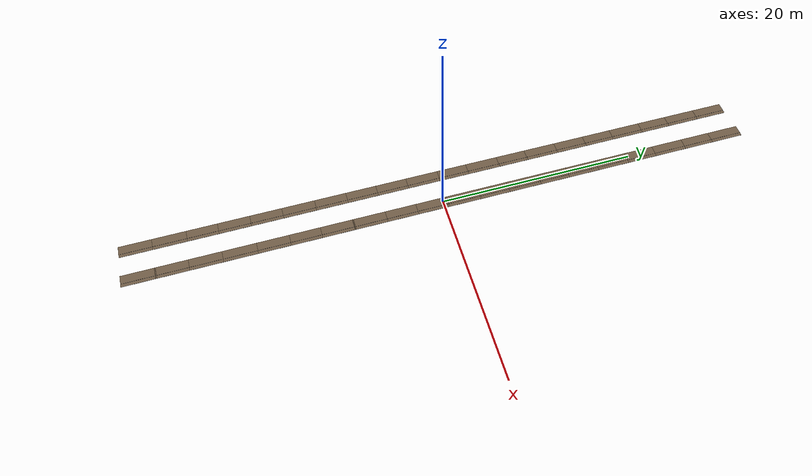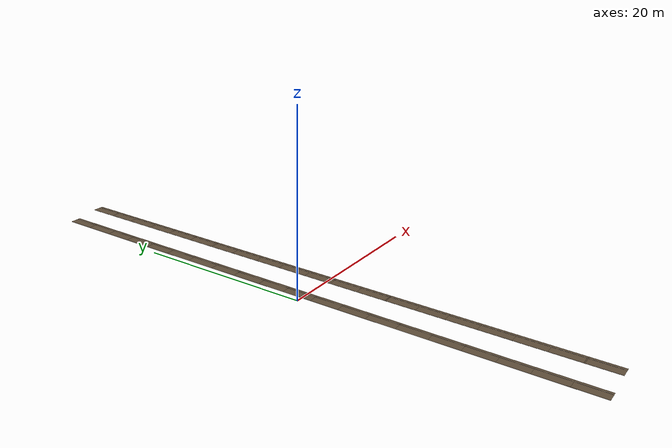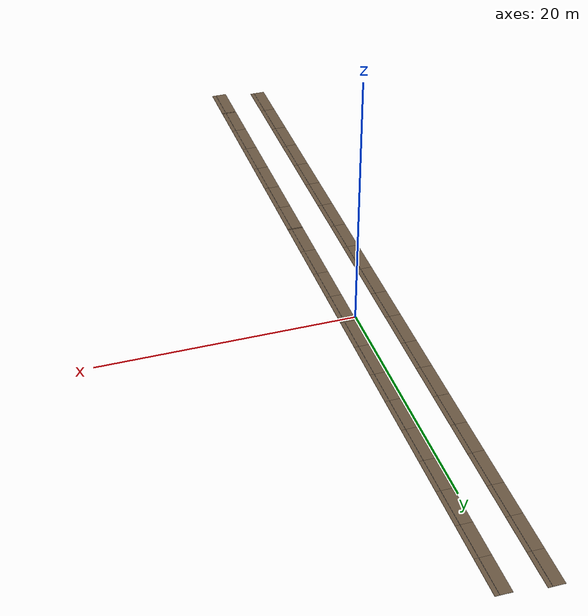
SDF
<sdf version="1.9">
 <world name="orchard_10x41">
  <model name="understory_r4">
   <static>true</static>
   <link name="link">
    <visual name="soil_1">
     <pose>-1.750 -29.450 1.958 0.0001 0.0000 0.0000</pose>
     <geometry><box><size>1.2000 3.2240 0.0300</size></box></geometry>
     <material>
      <ambient>0.400 0.330 0.250 1</ambient>
      <diffuse>0.440 0.363 0.275 1</diffuse>
      <specular>0.120 0.099 0.075 1</specular>
     </material>
     <plugin filename="gz-sim-label-system" name="gz::sim::systems::Label"><label>66</label></plugin>
    </visual>
    <visual name="soil_2">
     <pose>-1.750 -26.350 1.958 -0.0002 0.0000 0.0000</pose>
     <geometry><box><size>1.2000 3.2240 0.0300</size></box></geometry>
     <material>
      <ambient>0.400 0.330 0.250 1</ambient>
      <diffuse>0.440 0.363 0.275 1</diffuse>
      <specular>0.120 0.099 0.075 1</specular>
     </material>
     <plugin filename="gz-sim-label-system" name="gz::sim::systems::Label"><label>66</label></plugin>
    </visual>
    <visual name="soil_3">
     <pose>-1.750 -23.250 1.957 -0.0001 0.0000 0.0000</pose>
     <geometry><box><size>1.2000 3.2240 0.0300</size></box></geometry>
     <material>
      <ambient>0.400 0.330 0.250 1</ambient>
      <diffuse>0.440 0.363 0.275 1</diffuse>
      <specular>0.120 0.099 0.075 1</specular>
     </material>
     <plugin filename="gz-sim-label-system" name="gz::sim::systems::Label"><label>66</label></plugin>
    </visual>
    <visual name="soil_4">
     <pose>-1.750 -20.150 1.957 0.0000 0.0000 0.0000</pose>
     <geometry><box><size>1.2000 3.2240 0.0300</size></box></geometry>
     <material>
      <ambient>0.400 0.330 0.250 1</ambient>
      <diffuse>0.440 0.363 0.275 1</diffuse>
      <specular>0.120 0.099 0.075 1</specular>
     </material>
     <plugin filename="gz-sim-label-system" name="gz::sim::systems::Label"><label>66</label></plugin>
    </visual>
    <visual name="soil_5">
     <pose>-1.750 -17.050 1.958 0.0002 0.0000 0.0000</pose>
     <geometry><box><size>1.2000 3.2240 0.0300</size></box></geometry>
     <material>
      <ambient>0.400 0.330 0.250 1</ambient>
      <diffuse>0.440 0.363 0.275 1</diffuse>
      <specular>0.120 0.099 0.075 1</specular>
     </material>
     <plugin filename="gz-sim-label-system" name="gz::sim::systems::Label"><label>66</label></plugin>
    </visual>
    <visual name="soil_6">
     <pose>-1.750 -13.950 1.960 0.0009 0.0000 0.0000</pose>
     <geometry><box><size>1.2000 3.2240 0.0300</size></box></geometry>
     <material>
      <ambient>0.400 0.330 0.250 1</ambient>
      <diffuse>0.440 0.363 0.275 1</diffuse>
      <specular>0.120 0.099 0.075 1</specular>
     </material>
     <plugin filename="gz-sim-label-system" name="gz::sim::systems::Label"><label>66</label></plugin>
    </visual>
    <visual name="soil_7">
     <pose>-1.750 -10.850 1.962 0.0005 0.0000 0.0000</pose>
     <geometry><box><size>1.2000 3.2240 0.0300</size></box></geometry>
     <material>
      <ambient>0.400 0.330 0.250 1</ambient>
      <diffuse>0.440 0.363 0.275 1</diffuse>
      <specular>0.120 0.099 0.075 1</specular>
     </material>
     <plugin filename="gz-sim-label-system" name="gz::sim::systems::Label"><label>66</label></plugin>
    </visual>
    <visual name="soil_8">
     <pose>-1.750 -7.750 1.961 -0.0009 0.0000 0.0000</pose>
     <geometry><box><size>1.2000 3.2240 0.0300</size></box></geometry>
     <material>
      <ambient>0.400 0.330 0.250 1</ambient>
      <diffuse>0.440 0.363 0.275 1</diffuse>
      <specular>0.120 0.099 0.075 1</specular>
     </material>
     <plugin filename="gz-sim-label-system" name="gz::sim::systems::Label"><label>66</label></plugin>
    </visual>
    <visual name="soil_9">
     <pose>-1.750 -4.650 1.959 -0.0004 0.0000 0.0000</pose>
     <geometry><box><size>1.2000 3.2240 0.0300</size></box></geometry>
     <material>
      <ambient>0.400 0.330 0.250 1</ambient>
      <diffuse>0.440 0.363 0.275 1</diffuse>
      <specular>0.120 0.099 0.075 1</specular>
     </material>
     <plugin filename="gz-sim-label-system" name="gz::sim::systems::Label"><label>66</label></plugin>
    </visual>
    <visual name="soil_10">
     <pose>-1.750 -1.550 1.959 0.0001 0.0000 0.0000</pose>
     <geometry><box><size>1.2000 3.2240 0.0300</size></box></geometry>
     <material>
      <ambient>0.400 0.330 0.250 1</ambient>
      <diffuse>0.440 0.363 0.275 1</diffuse>
      <specular>0.120 0.099 0.075 1</specular>
     </material>
     <plugin filename="gz-sim-label-system" name="gz::sim::systems::Label"><label>66</label></plugin>
    </visual>
    <visual name="soil_11">
     <pose>-1.750 1.550 1.957 -0.0009 0.0000 0.0000</pose>
     <geometry><box><size>1.2000 3.2240 0.0300</size></box></geometry>
     <material>
      <ambient>0.400 0.330 0.250 1</ambient>
      <diffuse>0.440 0.363 0.275 1</diffuse>
      <specular>0.120 0.099 0.075 1</specular>
     </material>
     <plugin filename="gz-sim-label-system" name="gz::sim::systems::Label"><label>66</label></plugin>
    </visual>
    <visual name="soil_12">
     <pose>-1.750 4.650 1.954 -0.0011 0.0000 0.0000</pose>
     <geometry><box><size>1.2000 3.2240 0.0300</size></box></geometry>
     <material>
      <ambient>0.400 0.330 0.250 1</ambient>
      <diffuse>0.440 0.363 0.275 1</diffuse>
      <specular>0.120 0.099 0.075 1</specular>
     </material>
     <plugin filename="gz-sim-label-system" name="gz::sim::systems::Label"><label>66</label></plugin>
    </visual>
    <visual name="soil_13">
     <pose>-1.750 7.750 1.951 -0.0008 0.0000 0.0000</pose>
     <geometry><box><size>1.2000 3.2240 0.0300</size></box></geometry>
     <material>
      <ambient>0.400 0.330 0.250 1</ambient>
      <diffuse>0.440 0.363 0.275 1</diffuse>
      <specular>0.120 0.099 0.075 1</specular>
     </material>
     <plugin filename="gz-sim-label-system" name="gz::sim::systems::Label"><label>66</label></plugin>
    </visual>
    <visual name="soil_14">
     <pose>-1.750 10.850 1.949 -0.0006 0.0000 0.0000</pose>
     <geometry><box><size>1.2000 3.2240 0.0300</size></box></geometry>
     <material>
      <ambient>0.400 0.330 0.250 1</ambient>
      <diffuse>0.440 0.363 0.275 1</diffuse>
      <specular>0.120 0.099 0.075 1</specular>
     </material>
     <plugin filename="gz-sim-label-system" name="gz::sim::systems::Label"><label>66</label></plugin>
    </visual>
    <visual name="soil_15">
     <pose>-1.750 13.950 1.948 -0.0000 0.0000 0.0000</pose>
     <geometry><box><size>1.2000 3.2240 0.0300</size></box></geometry>
     <material>
      <ambient>0.400 0.330 0.250 1</ambient>
      <diffuse>0.440 0.363 0.275 1</diffuse>
      <specular>0.120 0.099 0.075 1</specular>
     </material>
     <plugin filename="gz-sim-label-system" name="gz::sim::systems::Label"><label>66</label></plugin>
    </visual>
    <visual name="soil_16">
     <pose>-1.750 17.050 1.949 0.0008 0.0000 0.0000</pose>
     <geometry><box><size>1.2000 3.2240 0.0300</size></box></geometry>
     <material>
      <ambient>0.400 0.330 0.250 1</ambient>
      <diffuse>0.440 0.363 0.275 1</diffuse>
      <specular>0.120 0.099 0.075 1</specular>
     </material>
     <plugin filename="gz-sim-label-system" name="gz::sim::systems::Label"><label>66</label></plugin>
    </visual>
    <visual name="soil_17">
     <pose>-1.750 20.150 1.951 0.0002 0.0000 0.0000</pose>
     <geometry><box><size>1.2000 3.2240 0.0300</size></box></geometry>
     <material>
      <ambient>0.400 0.330 0.250 1</ambient>
      <diffuse>0.440 0.363 0.275 1</diffuse>
      <specular>0.120 0.099 0.075 1</specular>
     </material>
     <plugin filename="gz-sim-label-system" name="gz::sim::systems::Label"><label>66</label></plugin>
    </visual>
    <visual name="soil_18">
     <pose>-1.750 23.250 1.951 0.0001 0.0000 0.0000</pose>
     <geometry><box><size>1.2000 3.2240 0.0300</size></box></geometry>
     <material>
      <ambient>0.400 0.330 0.250 1</ambient>
      <diffuse>0.440 0.363 0.275 1</diffuse>
      <specular>0.120 0.099 0.075 1</specular>
     </material>
     <plugin filename="gz-sim-label-system" name="gz::sim::systems::Label"><label>66</label></plugin>
    </visual>
    <visual name="soil_19">
     <pose>-1.750 26.350 1.952 0.0002 0.0000 0.0000</pose>
     <geometry><box><size>1.2000 3.2240 0.0300</size></box></geometry>
     <material>
      <ambient>0.400 0.330 0.250 1</ambient>
      <diffuse>0.440 0.363 0.275 1</diffuse>
      <specular>0.120 0.099 0.075 1</specular>
     </material>
     <plugin filename="gz-sim-label-system" name="gz::sim::systems::Label"><label>66</label></plugin>
    </visual>
    <visual name="soil_20">
     <pose>-1.750 29.450 1.952 0.0003 0.0000 0.0000</pose>
     <geometry><box><size>1.2000 3.2240 0.0300</size></box></geometry>
     <material>
      <ambient>0.400 0.330 0.250 1</ambient>
      <diffuse>0.440 0.363 0.275 1</diffuse>
      <specular>0.120 0.099 0.075 1</specular>
     </material>
     <plugin filename="gz-sim-label-system" name="gz::sim::systems::Label"><label>66</label></plugin>
    </visual>
    <visual name="drip_21">
     <pose>-1.470 -29.450 1.988 1.5709 0.0000 0.0000</pose>
     <geometry><cylinder><radius>0.0110</radius><length>3.1620</length></cylinder></geometry>
     <material>
      <ambient>0.100 0.100 0.110 1</ambient>
      <diffuse>0.110 0.110 0.121 1</diffuse>
      <specular>0.030 0.030 0.033 1</specular>
     </material>
     <plugin filename="gz-sim-label-system" name="gz::sim::systems::Label"><label>67</label></plugin>
    </visual>
    <visual name="drip_22">
     <pose>-1.470 -26.350 1.988 1.5706 0.0000 0.0000</pose>
     <geometry><cylinder><radius>0.0110</radius><length>3.1620</length></cylinder></geometry>
     <material>
      <ambient>0.100 0.100 0.110 1</ambient>
      <diffuse>0.110 0.110 0.121 1</diffuse>
      <specular>0.030 0.030 0.033 1</specular>
     </material>
     <plugin filename="gz-sim-label-system" name="gz::sim::systems::Label"><label>67</label></plugin>
    </visual>
    <visual name="drip_23">
     <pose>-1.470 -23.250 1.987 1.5707 0.0000 0.0000</pose>
     <geometry><cylinder><radius>0.0110</radius><length>3.1620</length></cylinder></geometry>
     <material>
      <ambient>0.100 0.100 0.110 1</ambient>
      <diffuse>0.110 0.110 0.121 1</diffuse>
      <specular>0.030 0.030 0.033 1</specular>
     </material>
     <plugin filename="gz-sim-label-system" name="gz::sim::systems::Label"><label>67</label></plugin>
    </visual>
    <visual name="drip_24">
     <pose>-1.470 -20.150 1.987 1.5708 0.0000 0.0000</pose>
     <geometry><cylinder><radius>0.0110</radius><length>3.1620</length></cylinder></geometry>
     <material>
      <ambient>0.100 0.100 0.110 1</ambient>
      <diffuse>0.110 0.110 0.121 1</diffuse>
      <specular>0.030 0.030 0.033 1</specular>
     </material>
     <plugin filename="gz-sim-label-system" name="gz::sim::systems::Label"><label>67</label></plugin>
    </visual>
    <visual name="drip_25">
     <pose>-1.470 -17.050 1.988 1.5710 0.0000 0.0000</pose>
     <geometry><cylinder><radius>0.0110</radius><length>3.1620</length></cylinder></geometry>
     <material>
      <ambient>0.100 0.100 0.110 1</ambient>
      <diffuse>0.110 0.110 0.121 1</diffuse>
      <specular>0.030 0.030 0.033 1</specular>
     </material>
     <plugin filename="gz-sim-label-system" name="gz::sim::systems::Label"><label>67</label></plugin>
    </visual>
    <visual name="drip_26">
     <pose>-1.470 -13.950 1.990 1.5717 0.0000 0.0000</pose>
     <geometry><cylinder><radius>0.0110</radius><length>3.1620</length></cylinder></geometry>
     <material>
      <ambient>0.100 0.100 0.110 1</ambient>
      <diffuse>0.110 0.110 0.121 1</diffuse>
      <specular>0.030 0.030 0.033 1</specular>
     </material>
     <plugin filename="gz-sim-label-system" name="gz::sim::systems::Label"><label>67</label></plugin>
    </visual>
    <visual name="drip_27">
     <pose>-1.470 -10.850 1.992 1.5713 0.0000 0.0000</pose>
     <geometry><cylinder><radius>0.0110</radius><length>3.1620</length></cylinder></geometry>
     <material>
      <ambient>0.100 0.100 0.110 1</ambient>
      <diffuse>0.110 0.110 0.121 1</diffuse>
      <specular>0.030 0.030 0.033 1</specular>
     </material>
     <plugin filename="gz-sim-label-system" name="gz::sim::systems::Label"><label>67</label></plugin>
    </visual>
    <visual name="drip_28">
     <pose>-1.470 -7.750 1.991 1.5699 0.0000 0.0000</pose>
     <geometry><cylinder><radius>0.0110</radius><length>3.1620</length></cylinder></geometry>
     <material>
      <ambient>0.100 0.100 0.110 1</ambient>
      <diffuse>0.110 0.110 0.121 1</diffuse>
      <specular>0.030 0.030 0.033 1</specular>
     </material>
     <plugin filename="gz-sim-label-system" name="gz::sim::systems::Label"><label>67</label></plugin>
    </visual>
    <visual name="drip_29">
     <pose>-1.470 -4.650 1.989 1.5704 0.0000 0.0000</pose>
     <geometry><cylinder><radius>0.0110</radius><length>3.1620</length></cylinder></geometry>
     <material>
      <ambient>0.100 0.100 0.110 1</ambient>
      <diffuse>0.110 0.110 0.121 1</diffuse>
      <specular>0.030 0.030 0.033 1</specular>
     </material>
     <plugin filename="gz-sim-label-system" name="gz::sim::systems::Label"><label>67</label></plugin>
    </visual>
    <visual name="drip_30">
     <pose>-1.470 -1.550 1.989 1.5709 0.0000 0.0000</pose>
     <geometry><cylinder><radius>0.0110</radius><length>3.1620</length></cylinder></geometry>
     <material>
      <ambient>0.100 0.100 0.110 1</ambient>
      <diffuse>0.110 0.110 0.121 1</diffuse>
      <specular>0.030 0.030 0.033 1</specular>
     </material>
     <plugin filename="gz-sim-label-system" name="gz::sim::systems::Label"><label>67</label></plugin>
    </visual>
    <visual name="drip_31">
     <pose>-1.470 1.550 1.987 1.5699 0.0000 0.0000</pose>
     <geometry><cylinder><radius>0.0110</radius><length>3.1620</length></cylinder></geometry>
     <material>
      <ambient>0.100 0.100 0.110 1</ambient>
      <diffuse>0.110 0.110 0.121 1</diffuse>
      <specular>0.030 0.030 0.033 1</specular>
     </material>
     <plugin filename="gz-sim-label-system" name="gz::sim::systems::Label"><label>67</label></plugin>
    </visual>
    <visual name="drip_32">
     <pose>-1.470 4.650 1.984 1.5697 0.0000 0.0000</pose>
     <geometry><cylinder><radius>0.0110</radius><length>3.1620</length></cylinder></geometry>
     <material>
      <ambient>0.100 0.100 0.110 1</ambient>
      <diffuse>0.110 0.110 0.121 1</diffuse>
      <specular>0.030 0.030 0.033 1</specular>
     </material>
     <plugin filename="gz-sim-label-system" name="gz::sim::systems::Label"><label>67</label></plugin>
    </visual>
    <visual name="drip_33">
     <pose>-1.470 7.750 1.981 1.5700 0.0000 0.0000</pose>
     <geometry><cylinder><radius>0.0110</radius><length>3.1620</length></cylinder></geometry>
     <material>
      <ambient>0.100 0.100 0.110 1</ambient>
      <diffuse>0.110 0.110 0.121 1</diffuse>
      <specular>0.030 0.030 0.033 1</specular>
     </material>
     <plugin filename="gz-sim-label-system" name="gz::sim::systems::Label"><label>67</label></plugin>
    </visual>
    <visual name="drip_34">
     <pose>-1.470 10.850 1.979 1.5702 0.0000 0.0000</pose>
     <geometry><cylinder><radius>0.0110</radius><length>3.1620</length></cylinder></geometry>
     <material>
      <ambient>0.100 0.100 0.110 1</ambient>
      <diffuse>0.110 0.110 0.121 1</diffuse>
      <specular>0.030 0.030 0.033 1</specular>
     </material>
     <plugin filename="gz-sim-label-system" name="gz::sim::systems::Label"><label>67</label></plugin>
    </visual>
    <visual name="drip_35">
     <pose>-1.470 13.950 1.978 1.5708 0.0000 0.0000</pose>
     <geometry><cylinder><radius>0.0110</radius><length>3.1620</length></cylinder></geometry>
     <material>
      <ambient>0.100 0.100 0.110 1</ambient>
      <diffuse>0.110 0.110 0.121 1</diffuse>
      <specular>0.030 0.030 0.033 1</specular>
     </material>
     <plugin filename="gz-sim-label-system" name="gz::sim::systems::Label"><label>67</label></plugin>
    </visual>
    <visual name="drip_36">
     <pose>-1.470 17.050 1.979 1.5716 0.0000 0.0000</pose>
     <geometry><cylinder><radius>0.0110</radius><length>3.1620</length></cylinder></geometry>
     <material>
      <ambient>0.100 0.100 0.110 1</ambient>
      <diffuse>0.110 0.110 0.121 1</diffuse>
      <specular>0.030 0.030 0.033 1</specular>
     </material>
     <plugin filename="gz-sim-label-system" name="gz::sim::systems::Label"><label>67</label></plugin>
    </visual>
    <visual name="drip_37">
     <pose>-1.470 20.150 1.981 1.5710 0.0000 0.0000</pose>
     <geometry><cylinder><radius>0.0110</radius><length>3.1620</length></cylinder></geometry>
     <material>
      <ambient>0.100 0.100 0.110 1</ambient>
      <diffuse>0.110 0.110 0.121 1</diffuse>
      <specular>0.030 0.030 0.033 1</specular>
     </material>
     <plugin filename="gz-sim-label-system" name="gz::sim::systems::Label"><label>67</label></plugin>
    </visual>
    <visual name="drip_38">
     <pose>-1.470 23.250 1.981 1.5709 0.0000 0.0000</pose>
     <geometry><cylinder><radius>0.0110</radius><length>3.1620</length></cylinder></geometry>
     <material>
      <ambient>0.100 0.100 0.110 1</ambient>
      <diffuse>0.110 0.110 0.121 1</diffuse>
      <specular>0.030 0.030 0.033 1</specular>
     </material>
     <plugin filename="gz-sim-label-system" name="gz::sim::systems::Label"><label>67</label></plugin>
    </visual>
    <visual name="drip_39">
     <pose>-1.470 26.350 1.982 1.5710 0.0000 0.0000</pose>
     <geometry><cylinder><radius>0.0110</radius><length>3.1620</length></cylinder></geometry>
     <material>
      <ambient>0.100 0.100 0.110 1</ambient>
      <diffuse>0.110 0.110 0.121 1</diffuse>
      <specular>0.030 0.030 0.033 1</specular>
     </material>
     <plugin filename="gz-sim-label-system" name="gz::sim::systems::Label"><label>67</label></plugin>
    </visual>
    <visual name="drip_40">
     <pose>-1.470 29.450 1.982 1.5711 0.0000 0.0000</pose>
     <geometry><cylinder><radius>0.0110</radius><length>3.1620</length></cylinder></geometry>
     <material>
      <ambient>0.100 0.100 0.110 1</ambient>
      <diffuse>0.110 0.110 0.121 1</diffuse>
      <specular>0.030 0.030 0.033 1</specular>
     </material>
     <plugin filename="gz-sim-label-system" name="gz::sim::systems::Label"><label>67</label></plugin>
    </visual>
   </link>
  </model>
  <model name="understory_r5">
   <static>true</static>
   <link name="link">
    <visual name="soil_1">
     <pose>1.750 -29.450 2.333 0.0001 0.0000 0.0000</pose>
     <geometry><box><size>1.2000 3.2240 0.0300</size></box></geometry>
     <material>
      <ambient>0.400 0.330 0.250 1</ambient>
      <diffuse>0.440 0.363 0.275 1</diffuse>
      <specular>0.120 0.099 0.075 1</specular>
     </material>
     <plugin filename="gz-sim-label-system" name="gz::sim::systems::Label"><label>66</label></plugin>
    </visual>
    <visual name="soil_2">
     <pose>1.750 -26.350 2.333 -0.0001 0.0000 0.0000</pose>
     <geometry><box><size>1.2000 3.2240 0.0300</size></box></geometry>
     <material>
      <ambient>0.400 0.330 0.250 1</ambient>
      <diffuse>0.440 0.363 0.275 1</diffuse>
      <specular>0.120 0.099 0.075 1</specular>
     </material>
     <plugin filename="gz-sim-label-system" name="gz::sim::systems::Label"><label>66</label></plugin>
    </visual>
    <visual name="soil_3">
     <pose>1.750 -23.250 2.333 -0.0002 0.0000 0.0000</pose>
     <geometry><box><size>1.2000 3.2240 0.0300</size></box></geometry>
     <material>
      <ambient>0.400 0.330 0.250 1</ambient>
      <diffuse>0.440 0.363 0.275 1</diffuse>
      <specular>0.120 0.099 0.075 1</specular>
     </material>
     <plugin filename="gz-sim-label-system" name="gz::sim::systems::Label"><label>66</label></plugin>
    </visual>
    <visual name="soil_4">
     <pose>1.750 -20.150 2.333 -0.0000 0.0000 0.0000</pose>
     <geometry><box><size>1.2000 3.2240 0.0300</size></box></geometry>
     <material>
      <ambient>0.400 0.330 0.250 1</ambient>
      <diffuse>0.440 0.363 0.275 1</diffuse>
      <specular>0.120 0.099 0.075 1</specular>
     </material>
     <plugin filename="gz-sim-label-system" name="gz::sim::systems::Label"><label>66</label></plugin>
    </visual>
    <visual name="soil_5">
     <pose>1.750 -17.050 2.333 0.0001 0.0000 0.0000</pose>
     <geometry><box><size>1.2000 3.2240 0.0300</size></box></geometry>
     <material>
      <ambient>0.400 0.330 0.250 1</ambient>
      <diffuse>0.440 0.363 0.275 1</diffuse>
      <specular>0.120 0.099 0.075 1</specular>
     </material>
     <plugin filename="gz-sim-label-system" name="gz::sim::systems::Label"><label>66</label></plugin>
    </visual>
    <visual name="soil_6">
     <pose>1.750 -13.950 2.334 0.0008 0.0000 0.0000</pose>
     <geometry><box><size>1.2000 3.2240 0.0300</size></box></geometry>
     <material>
      <ambient>0.400 0.330 0.250 1</ambient>
      <diffuse>0.440 0.363 0.275 1</diffuse>
      <specular>0.120 0.099 0.075 1</specular>
     </material>
     <plugin filename="gz-sim-label-system" name="gz::sim::systems::Label"><label>66</label></plugin>
    </visual>
    <visual name="soil_7">
     <pose>1.750 -10.850 2.336 0.0004 0.0000 0.0000</pose>
     <geometry><box><size>1.2000 3.2240 0.0300</size></box></geometry>
     <material>
      <ambient>0.400 0.330 0.250 1</ambient>
      <diffuse>0.440 0.363 0.275 1</diffuse>
      <specular>0.120 0.099 0.075 1</specular>
     </material>
     <plugin filename="gz-sim-label-system" name="gz::sim::systems::Label"><label>66</label></plugin>
    </visual>
    <visual name="soil_8">
     <pose>1.750 -7.750 2.336 -0.0004 0.0000 0.0000</pose>
     <geometry><box><size>1.2000 3.2240 0.0300</size></box></geometry>
     <material>
      <ambient>0.400 0.330 0.250 1</ambient>
      <diffuse>0.440 0.363 0.275 1</diffuse>
      <specular>0.120 0.099 0.075 1</specular>
     </material>
     <plugin filename="gz-sim-label-system" name="gz::sim::systems::Label"><label>66</label></plugin>
    </visual>
    <visual name="soil_9">
     <pose>1.750 -4.650 2.335 -0.0002 0.0000 0.0000</pose>
     <geometry><box><size>1.2000 3.2240 0.0300</size></box></geometry>
     <material>
      <ambient>0.400 0.330 0.250 1</ambient>
      <diffuse>0.440 0.363 0.275 1</diffuse>
      <specular>0.120 0.099 0.075 1</specular>
     </material>
     <plugin filename="gz-sim-label-system" name="gz::sim::systems::Label"><label>66</label></plugin>
    </visual>
    <visual name="soil_10">
     <pose>1.750 -1.550 2.335 0.0002 0.0000 0.0000</pose>
     <geometry><box><size>1.2000 3.2240 0.0300</size></box></geometry>
     <material>
      <ambient>0.400 0.330 0.250 1</ambient>
      <diffuse>0.440 0.363 0.275 1</diffuse>
      <specular>0.120 0.099 0.075 1</specular>
     </material>
     <plugin filename="gz-sim-label-system" name="gz::sim::systems::Label"><label>66</label></plugin>
    </visual>
    <visual name="soil_11">
     <pose>1.750 1.550 2.334 -0.0010 0.0000 0.0000</pose>
     <geometry><box><size>1.2000 3.2240 0.0300</size></box></geometry>
     <material>
      <ambient>0.400 0.330 0.250 1</ambient>
      <diffuse>0.440 0.363 0.275 1</diffuse>
      <specular>0.120 0.099 0.075 1</specular>
     </material>
     <plugin filename="gz-sim-label-system" name="gz::sim::systems::Label"><label>66</label></plugin>
    </visual>
    <visual name="soil_12">
     <pose>1.750 4.650 2.330 -0.0012 0.0000 0.0000</pose>
     <geometry><box><size>1.2000 3.2240 0.0300</size></box></geometry>
     <material>
      <ambient>0.400 0.330 0.250 1</ambient>
      <diffuse>0.440 0.363 0.275 1</diffuse>
      <specular>0.120 0.099 0.075 1</specular>
     </material>
     <plugin filename="gz-sim-label-system" name="gz::sim::systems::Label"><label>66</label></plugin>
    </visual>
    <visual name="soil_13">
     <pose>1.750 7.750 2.327 -0.0008 0.0000 0.0000</pose>
     <geometry><box><size>1.2000 3.2240 0.0300</size></box></geometry>
     <material>
      <ambient>0.400 0.330 0.250 1</ambient>
      <diffuse>0.440 0.363 0.275 1</diffuse>
      <specular>0.120 0.099 0.075 1</specular>
     </material>
     <plugin filename="gz-sim-label-system" name="gz::sim::systems::Label"><label>66</label></plugin>
    </visual>
    <visual name="soil_14">
     <pose>1.750 10.850 2.325 -0.0004 0.0000 0.0000</pose>
     <geometry><box><size>1.2000 3.2240 0.0300</size></box></geometry>
     <material>
      <ambient>0.400 0.330 0.250 1</ambient>
      <diffuse>0.440 0.363 0.275 1</diffuse>
      <specular>0.120 0.099 0.075 1</specular>
     </material>
     <plugin filename="gz-sim-label-system" name="gz::sim::systems::Label"><label>66</label></plugin>
    </visual>
    <visual name="soil_15">
     <pose>1.750 13.950 2.325 0.0002 0.0000 0.0000</pose>
     <geometry><box><size>1.2000 3.2240 0.0300</size></box></geometry>
     <material>
      <ambient>0.400 0.330 0.250 1</ambient>
      <diffuse>0.440 0.363 0.275 1</diffuse>
      <specular>0.120 0.099 0.075 1</specular>
     </material>
     <plugin filename="gz-sim-label-system" name="gz::sim::systems::Label"><label>66</label></plugin>
    </visual>
    <visual name="soil_16">
     <pose>1.750 17.050 2.327 0.0008 0.0000 0.0000</pose>
     <geometry><box><size>1.2000 3.2240 0.0300</size></box></geometry>
     <material>
      <ambient>0.400 0.330 0.250 1</ambient>
      <diffuse>0.440 0.363 0.275 1</diffuse>
      <specular>0.120 0.099 0.075 1</specular>
     </material>
     <plugin filename="gz-sim-label-system" name="gz::sim::systems::Label"><label>66</label></plugin>
    </visual>
    <visual name="soil_17">
     <pose>1.750 20.150 2.328 0.0001 0.0000 0.0000</pose>
     <geometry><box><size>1.2000 3.2240 0.0300</size></box></geometry>
     <material>
      <ambient>0.400 0.330 0.250 1</ambient>
      <diffuse>0.440 0.363 0.275 1</diffuse>
      <specular>0.120 0.099 0.075 1</specular>
     </material>
     <plugin filename="gz-sim-label-system" name="gz::sim::systems::Label"><label>66</label></plugin>
    </visual>
    <visual name="soil_18">
     <pose>1.750 23.250 2.328 -0.0002 0.0000 0.0000</pose>
     <geometry><box><size>1.2000 3.2240 0.0300</size></box></geometry>
     <material>
      <ambient>0.400 0.330 0.250 1</ambient>
      <diffuse>0.440 0.363 0.275 1</diffuse>
      <specular>0.120 0.099 0.075 1</specular>
     </material>
     <plugin filename="gz-sim-label-system" name="gz::sim::systems::Label"><label>66</label></plugin>
    </visual>
    <visual name="soil_19">
     <pose>1.750 26.350 2.328 0.0003 0.0000 0.0000</pose>
     <geometry><box><size>1.2000 3.2240 0.0300</size></box></geometry>
     <material>
      <ambient>0.400 0.330 0.250 1</ambient>
      <diffuse>0.440 0.363 0.275 1</diffuse>
      <specular>0.120 0.099 0.075 1</specular>
     </material>
     <plugin filename="gz-sim-label-system" name="gz::sim::systems::Label"><label>66</label></plugin>
    </visual>
    <visual name="soil_20">
     <pose>1.750 29.450 2.329 0.0003 0.0000 0.0000</pose>
     <geometry><box><size>1.2000 3.2240 0.0300</size></box></geometry>
     <material>
      <ambient>0.400 0.330 0.250 1</ambient>
      <diffuse>0.440 0.363 0.275 1</diffuse>
      <specular>0.120 0.099 0.075 1</specular>
     </material>
     <plugin filename="gz-sim-label-system" name="gz::sim::systems::Label"><label>66</label></plugin>
    </visual>
    <visual name="drip_21">
     <pose>2.030 -29.450 2.363 1.5709 0.0000 0.0000</pose>
     <geometry><cylinder><radius>0.0110</radius><length>3.1620</length></cylinder></geometry>
     <material>
      <ambient>0.100 0.100 0.110 1</ambient>
      <diffuse>0.110 0.110 0.121 1</diffuse>
      <specular>0.030 0.030 0.033 1</specular>
     </material>
     <plugin filename="gz-sim-label-system" name="gz::sim::systems::Label"><label>67</label></plugin>
    </visual>
    <visual name="drip_22">
     <pose>2.030 -26.350 2.363 1.5707 0.0000 0.0000</pose>
     <geometry><cylinder><radius>0.0110</radius><length>3.1620</length></cylinder></geometry>
     <material>
      <ambient>0.100 0.100 0.110 1</ambient>
      <diffuse>0.110 0.110 0.121 1</diffuse>
      <specular>0.030 0.030 0.033 1</specular>
     </material>
     <plugin filename="gz-sim-label-system" name="gz::sim::systems::Label"><label>67</label></plugin>
    </visual>
    <visual name="drip_23">
     <pose>2.030 -23.250 2.363 1.5706 0.0000 0.0000</pose>
     <geometry><cylinder><radius>0.0110</radius><length>3.1620</length></cylinder></geometry>
     <material>
      <ambient>0.100 0.100 0.110 1</ambient>
      <diffuse>0.110 0.110 0.121 1</diffuse>
      <specular>0.030 0.030 0.033 1</specular>
     </material>
     <plugin filename="gz-sim-label-system" name="gz::sim::systems::Label"><label>67</label></plugin>
    </visual>
    <visual name="drip_24">
     <pose>2.030 -20.150 2.363 1.5708 0.0000 0.0000</pose>
     <geometry><cylinder><radius>0.0110</radius><length>3.1620</length></cylinder></geometry>
     <material>
      <ambient>0.100 0.100 0.110 1</ambient>
      <diffuse>0.110 0.110 0.121 1</diffuse>
      <specular>0.030 0.030 0.033 1</specular>
     </material>
     <plugin filename="gz-sim-label-system" name="gz::sim::systems::Label"><label>67</label></plugin>
    </visual>
    <visual name="drip_25">
     <pose>2.030 -17.050 2.363 1.5709 0.0000 0.0000</pose>
     <geometry><cylinder><radius>0.0110</radius><length>3.1620</length></cylinder></geometry>
     <material>
      <ambient>0.100 0.100 0.110 1</ambient>
      <diffuse>0.110 0.110 0.121 1</diffuse>
      <specular>0.030 0.030 0.033 1</specular>
     </material>
     <plugin filename="gz-sim-label-system" name="gz::sim::systems::Label"><label>67</label></plugin>
    </visual>
    <visual name="drip_26">
     <pose>2.030 -13.950 2.364 1.5716 0.0000 0.0000</pose>
     <geometry><cylinder><radius>0.0110</radius><length>3.1620</length></cylinder></geometry>
     <material>
      <ambient>0.100 0.100 0.110 1</ambient>
      <diffuse>0.110 0.110 0.121 1</diffuse>
      <specular>0.030 0.030 0.033 1</specular>
     </material>
     <plugin filename="gz-sim-label-system" name="gz::sim::systems::Label"><label>67</label></plugin>
    </visual>
    <visual name="drip_27">
     <pose>2.030 -10.850 2.366 1.5712 0.0000 0.0000</pose>
     <geometry><cylinder><radius>0.0110</radius><length>3.1620</length></cylinder></geometry>
     <material>
      <ambient>0.100 0.100 0.110 1</ambient>
      <diffuse>0.110 0.110 0.121 1</diffuse>
      <specular>0.030 0.030 0.033 1</specular>
     </material>
     <plugin filename="gz-sim-label-system" name="gz::sim::systems::Label"><label>67</label></plugin>
    </visual>
    <visual name="drip_28">
     <pose>2.030 -7.750 2.366 1.5704 0.0000 0.0000</pose>
     <geometry><cylinder><radius>0.0110</radius><length>3.1620</length></cylinder></geometry>
     <material>
      <ambient>0.100 0.100 0.110 1</ambient>
      <diffuse>0.110 0.110 0.121 1</diffuse>
      <specular>0.030 0.030 0.033 1</specular>
     </material>
     <plugin filename="gz-sim-label-system" name="gz::sim::systems::Label"><label>67</label></plugin>
    </visual>
    <visual name="drip_29">
     <pose>2.030 -4.650 2.365 1.5706 0.0000 0.0000</pose>
     <geometry><cylinder><radius>0.0110</radius><length>3.1620</length></cylinder></geometry>
     <material>
      <ambient>0.100 0.100 0.110 1</ambient>
      <diffuse>0.110 0.110 0.121 1</diffuse>
      <specular>0.030 0.030 0.033 1</specular>
     </material>
     <plugin filename="gz-sim-label-system" name="gz::sim::systems::Label"><label>67</label></plugin>
    </visual>
    <visual name="drip_30">
     <pose>2.030 -1.550 2.365 1.5710 0.0000 0.0000</pose>
     <geometry><cylinder><radius>0.0110</radius><length>3.1620</length></cylinder></geometry>
     <material>
      <ambient>0.100 0.100 0.110 1</ambient>
      <diffuse>0.110 0.110 0.121 1</diffuse>
      <specular>0.030 0.030 0.033 1</specular>
     </material>
     <plugin filename="gz-sim-label-system" name="gz::sim::systems::Label"><label>67</label></plugin>
    </visual>
    <visual name="drip_31">
     <pose>2.030 1.550 2.364 1.5698 0.0000 0.0000</pose>
     <geometry><cylinder><radius>0.0110</radius><length>3.1620</length></cylinder></geometry>
     <material>
      <ambient>0.100 0.100 0.110 1</ambient>
      <diffuse>0.110 0.110 0.121 1</diffuse>
      <specular>0.030 0.030 0.033 1</specular>
     </material>
     <plugin filename="gz-sim-label-system" name="gz::sim::systems::Label"><label>67</label></plugin>
    </visual>
    <visual name="drip_32">
     <pose>2.030 4.650 2.360 1.5696 0.0000 0.0000</pose>
     <geometry><cylinder><radius>0.0110</radius><length>3.1620</length></cylinder></geometry>
     <material>
      <ambient>0.100 0.100 0.110 1</ambient>
      <diffuse>0.110 0.110 0.121 1</diffuse>
      <specular>0.030 0.030 0.033 1</specular>
     </material>
     <plugin filename="gz-sim-label-system" name="gz::sim::systems::Label"><label>67</label></plugin>
    </visual>
    <visual name="drip_33">
     <pose>2.030 7.750 2.357 1.5700 0.0000 0.0000</pose>
     <geometry><cylinder><radius>0.0110</radius><length>3.1620</length></cylinder></geometry>
     <material>
      <ambient>0.100 0.100 0.110 1</ambient>
      <diffuse>0.110 0.110 0.121 1</diffuse>
      <specular>0.030 0.030 0.033 1</specular>
     </material>
     <plugin filename="gz-sim-label-system" name="gz::sim::systems::Label"><label>67</label></plugin>
    </visual>
    <visual name="drip_34">
     <pose>2.030 10.850 2.355 1.5704 0.0000 0.0000</pose>
     <geometry><cylinder><radius>0.0110</radius><length>3.1620</length></cylinder></geometry>
     <material>
      <ambient>0.100 0.100 0.110 1</ambient>
      <diffuse>0.110 0.110 0.121 1</diffuse>
      <specular>0.030 0.030 0.033 1</specular>
     </material>
     <plugin filename="gz-sim-label-system" name="gz::sim::systems::Label"><label>67</label></plugin>
    </visual>
    <visual name="drip_35">
     <pose>2.030 13.950 2.355 1.5710 0.0000 0.0000</pose>
     <geometry><cylinder><radius>0.0110</radius><length>3.1620</length></cylinder></geometry>
     <material>
      <ambient>0.100 0.100 0.110 1</ambient>
      <diffuse>0.110 0.110 0.121 1</diffuse>
      <specular>0.030 0.030 0.033 1</specular>
     </material>
     <plugin filename="gz-sim-label-system" name="gz::sim::systems::Label"><label>67</label></plugin>
    </visual>
    <visual name="drip_36">
     <pose>2.030 17.050 2.357 1.5716 0.0000 0.0000</pose>
     <geometry><cylinder><radius>0.0110</radius><length>3.1620</length></cylinder></geometry>
     <material>
      <ambient>0.100 0.100 0.110 1</ambient>
      <diffuse>0.110 0.110 0.121 1</diffuse>
      <specular>0.030 0.030 0.033 1</specular>
     </material>
     <plugin filename="gz-sim-label-system" name="gz::sim::systems::Label"><label>67</label></plugin>
    </visual>
    <visual name="drip_37">
     <pose>2.030 20.150 2.358 1.5709 0.0000 0.0000</pose>
     <geometry><cylinder><radius>0.0110</radius><length>3.1620</length></cylinder></geometry>
     <material>
      <ambient>0.100 0.100 0.110 1</ambient>
      <diffuse>0.110 0.110 0.121 1</diffuse>
      <specular>0.030 0.030 0.033 1</specular>
     </material>
     <plugin filename="gz-sim-label-system" name="gz::sim::systems::Label"><label>67</label></plugin>
    </visual>
    <visual name="drip_38">
     <pose>2.030 23.250 2.358 1.5706 0.0000 0.0000</pose>
     <geometry><cylinder><radius>0.0110</radius><length>3.1620</length></cylinder></geometry>
     <material>
      <ambient>0.100 0.100 0.110 1</ambient>
      <diffuse>0.110 0.110 0.121 1</diffuse>
      <specular>0.030 0.030 0.033 1</specular>
     </material>
     <plugin filename="gz-sim-label-system" name="gz::sim::systems::Label"><label>67</label></plugin>
    </visual>
    <visual name="drip_39">
     <pose>2.030 26.350 2.358 1.5711 0.0000 0.0000</pose>
     <geometry><cylinder><radius>0.0110</radius><length>3.1620</length></cylinder></geometry>
     <material>
      <ambient>0.100 0.100 0.110 1</ambient>
      <diffuse>0.110 0.110 0.121 1</diffuse>
      <specular>0.030 0.030 0.033 1</specular>
     </material>
     <plugin filename="gz-sim-label-system" name="gz::sim::systems::Label"><label>67</label></plugin>
    </visual>
    <visual name="drip_40">
     <pose>2.030 29.450 2.359 1.5711 0.0000 0.0000</pose>
     <geometry><cylinder><radius>0.0110</radius><length>3.1620</length></cylinder></geometry>
     <material>
      <ambient>0.100 0.100 0.110 1</ambient>
      <diffuse>0.110 0.110 0.121 1</diffuse>
      <specular>0.030 0.030 0.033 1</specular>
     </material>
     <plugin filename="gz-sim-label-system" name="gz::sim::systems::Label"><label>67</label></plugin>
    </visual>
   </link>
  </model>
 </world>
</sdf>
